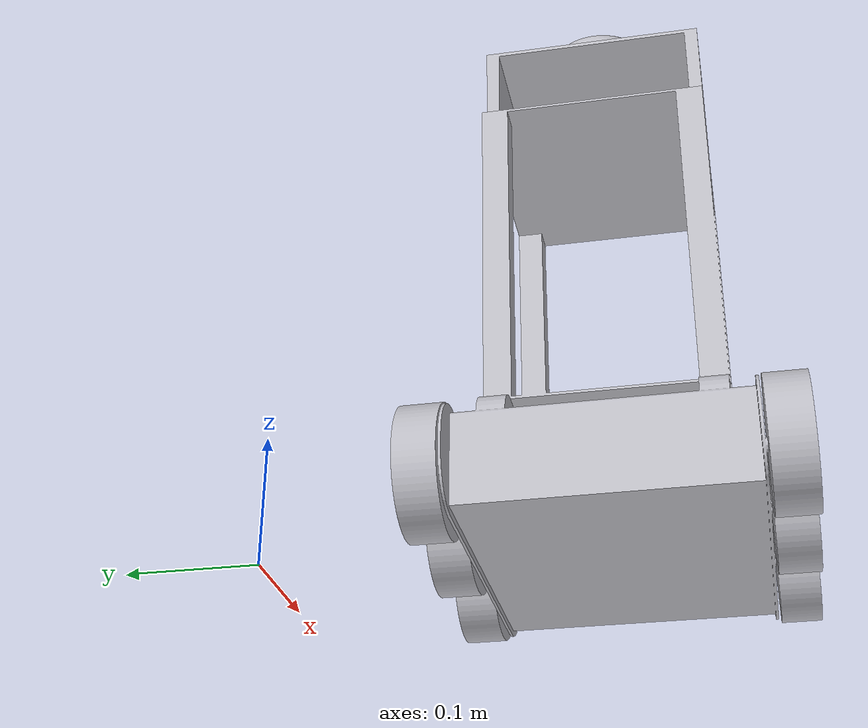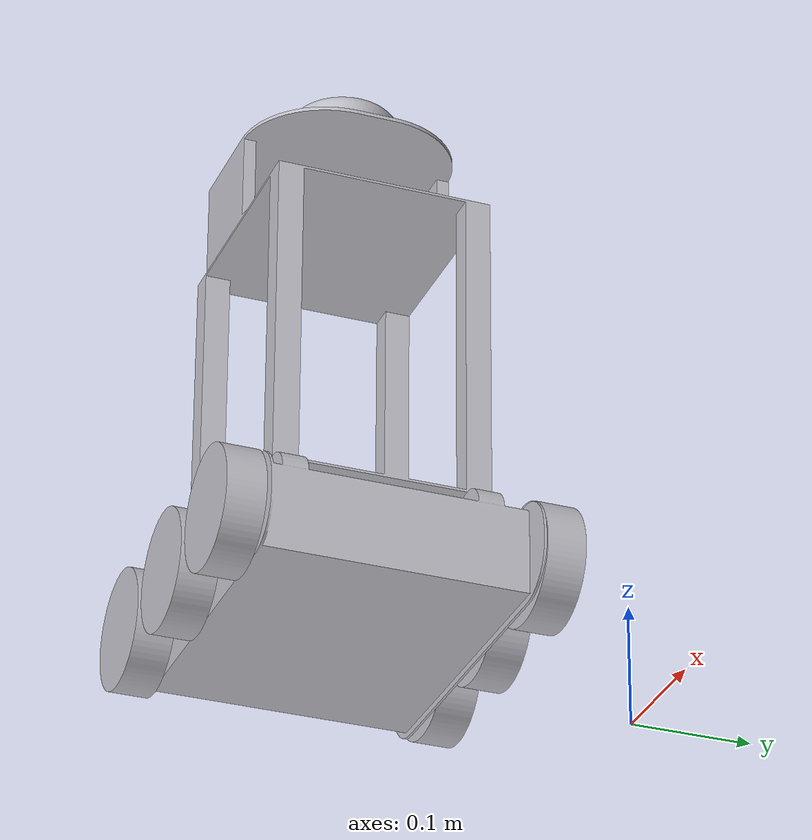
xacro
<?xml version="1.0" ?>
<robot name="tankbot" xmlns:xacro="http://www.ros.org/wiki/xacro">

<xacro:include filename="$(find tankbot_description)/urdf/materials.xacro" />
<xacro:include filename="$(find tankbot_description)/urdf/tankbot.trans" />
<xacro:include filename="$(find tankbot_description)/urdf/tankbot.gazebo" />
<link name="base_link">
  <inertial>
    <origin xyz="0.04802449670948884 -0.2570000000000001 0.03092345572753796" rpy="0 0 0"/>
    <mass value="9.663393854812522"/>
    <inertia ixx="0.050312" iyy="0.087124" izz="0.121613" ixy="-0.0" iyz="-0.0" ixz="-1.3e-05"/>
  </inertial>
  <visual>
    <origin xyz="0 0 0" rpy="0 0 0"/>
    <geometry>
      <mesh filename="package://tankbot_description/meshes/base_link.stl" scale="0.001 0.001 0.001"/>
    </geometry>
    <material name="silver"/>
  </visual>
  <collision>
    <origin xyz="0 0 0" rpy="0 0 0"/>
    <geometry>
      <mesh filename="package://tankbot_description/meshes/base_link.stl" scale="0.001 0.001 0.001"/>
    </geometry>
  </collision>
</link>

<link name="rw3_link_1">
  <inertial>
    <origin xyz="-2.7755575615628914e-17 -0.015000000000000069 -2.0816681711721685e-17" rpy="0 0 0"/>
    <mass value="1.6692754390078943"/>
    <inertia ixx="0.001067" iyy="0.001883" izz="0.001067" ixy="0.0" iyz="0.0" ixz="0.0"/>
  </inertial>
  <visual>
    <origin xyz="0.055 0.3635 -0.035" rpy="0 0 0"/>
    <geometry>
      <mesh filename="package://tankbot_description/meshes/rw3_link_1.stl" scale="0.001 0.001 0.001"/>
    </geometry>
    <material name="silver"/>
  </visual>
  <collision>
    <origin xyz="0.055 0.3635 -0.035" rpy="0 0 0"/>
    <geometry>
      <mesh filename="package://tankbot_description/meshes/rw3_link_1.stl" scale="0.001 0.001 0.001"/>
    </geometry>
  </collision>
</link>

<link name="rw2_link_1">
  <inertial>
    <origin xyz="2.7755575615628914e-17 -0.015000000000000513 9.020562075079397e-17" rpy="0 0 0"/>
    <mass value="1.669275439007894"/>
    <inertia ixx="0.001067" iyy="0.001883" izz="0.001067" ixy="-0.0" iyz="-0.0" ixz="-0.0"/>
  </inertial>
  <visual>
    <origin xyz="-0.0475 0.3635 -0.035" rpy="0 0 0"/>
    <geometry>
      <mesh filename="package://tankbot_description/meshes/rw2_link_1.stl" scale="0.001 0.001 0.001"/>
    </geometry>
    <material name="silver"/>
  </visual>
  <collision>
    <origin xyz="-0.0475 0.3635 -0.035" rpy="0 0 0"/>
    <geometry>
      <mesh filename="package://tankbot_description/meshes/rw2_link_1.stl" scale="0.001 0.001 0.001"/>
    </geometry>
  </collision>
</link>

<link name="rw1_link_1">
  <inertial>
    <origin xyz="-1.1102230246251565e-16 -0.015000000000000013 1.3877787807814457e-17" rpy="0 0 0"/>
    <mass value="1.6692754390078939"/>
    <inertia ixx="0.001067" iyy="0.001883" izz="0.001067" ixy="0.0" iyz="-0.0" ixz="-0.0"/>
  </inertial>
  <visual>
    <origin xyz="-0.15 0.3635 -0.035" rpy="0 0 0"/>
    <geometry>
      <mesh filename="package://tankbot_description/meshes/rw1_link_1.stl" scale="0.001 0.001 0.001"/>
    </geometry>
    <material name="silver"/>
  </visual>
  <collision>
    <origin xyz="-0.15 0.3635 -0.035" rpy="0 0 0"/>
    <geometry>
      <mesh filename="package://tankbot_description/meshes/rw1_link_1.stl" scale="0.001 0.001 0.001"/>
    </geometry>
  </collision>
</link>

<link name="lw1_link_1">
  <inertial>
    <origin xyz="1.1102230246251565e-16 0.014999999999999902 3.469446951953614e-17" rpy="0 0 0"/>
    <mass value="1.6692754390078937"/>
    <inertia ixx="0.001067" iyy="0.001883" izz="0.001067" ixy="0.0" iyz="0.0" ixz="0.0"/>
  </inertial>
  <visual>
    <origin xyz="-0.1505 0.1505 -0.035" rpy="0 0 0"/>
    <geometry>
      <mesh filename="package://tankbot_description/meshes/lw1_link_1.stl" scale="0.001 0.001 0.001"/>
    </geometry>
    <material name="silver"/>
  </visual>
  <collision>
    <origin xyz="-0.1505 0.1505 -0.035" rpy="0 0 0"/>
    <geometry>
      <mesh filename="package://tankbot_description/meshes/lw1_link_1.stl" scale="0.001 0.001 0.001"/>
    </geometry>
  </collision>
</link>

<link name="lw2_link_1">
  <inertial>
    <origin xyz="6.245004513516506e-17 0.014999999999999875 2.7755575615628914e-17" rpy="0 0 0"/>
    <mass value="1.6692754390078937"/>
    <inertia ixx="0.001067" iyy="0.001883" izz="0.001067" ixy="0.0" iyz="0.0" ixz="0.0"/>
  </inertial>
  <visual>
    <origin xyz="-0.048 0.1505 -0.035" rpy="0 0 0"/>
    <geometry>
      <mesh filename="package://tankbot_description/meshes/lw2_link_1.stl" scale="0.001 0.001 0.001"/>
    </geometry>
    <material name="silver"/>
  </visual>
  <collision>
    <origin xyz="-0.048 0.1505 -0.035" rpy="0 0 0"/>
    <geometry>
      <mesh filename="package://tankbot_description/meshes/lw2_link_1.stl" scale="0.001 0.001 0.001"/>
    </geometry>
  </collision>
</link>

<link name="lw3_link_1">
  <inertial>
    <origin xyz="9.71445146547012e-17 0.01499999999999993 2.7755575615628914e-17" rpy="0 0 0"/>
    <mass value="1.6692754390078937"/>
    <inertia ixx="0.001067" iyy="0.001883" izz="0.001067" ixy="0.0" iyz="0.0" ixz="0.0"/>
  </inertial>
  <visual>
    <origin xyz="0.0545 0.1505 -0.035" rpy="0 0 0"/>
    <geometry>
      <mesh filename="package://tankbot_description/meshes/lw3_link_1.stl" scale="0.001 0.001 0.001"/>
    </geometry>
    <material name="silver"/>
  </visual>
  <collision>
    <origin xyz="0.0545 0.1505 -0.035" rpy="0 0 0"/>
    <geometry>
      <mesh filename="package://tankbot_description/meshes/lw3_link_1.stl" scale="0.001 0.001 0.001"/>
    </geometry>
  </collision>
</link>

<link name="frame_1">
  <inertial>
    <origin xyz="1.1856979425378666e-07 -1.1102230246251565e-16 0.1270000000000003" rpy="0 0 0"/>
    <mass value="4.173751809755388"/>
    <inertia ixx="0.053156" iyy="0.059602" izz="0.047225" ixy="0.0" iyz="0.0" ixz="0.0"/>
  </inertial>
  <visual>
    <origin xyz="-0.048432 0.2575 -0.09" rpy="0 0 0"/>
    <geometry>
      <mesh filename="package://tankbot_description/meshes/frame_1.stl" scale="0.001 0.001 0.001"/>
    </geometry>
    <material name="silver"/>
  </visual>
  <collision>
    <origin xyz="-0.048432 0.2575 -0.09" rpy="0 0 0"/>
    <geometry>
      <mesh filename="package://tankbot_description/meshes/frame_1.stl" scale="0.001 0.001 0.001"/>
    </geometry>
  </collision>
</link>

<link name="holder_1">
  <inertial>
    <origin xyz="-0.015898641976588364 -0.0001410013794365672 0.03722253654962837" rpy="0 0 0"/>
    <mass value="2.1421450013668144"/>
    <inertia ixx="0.010373" iyy="0.004839" izz="0.011427" ixy="1.1e-05" iyz="-5e-06" ixz="6.3e-05"/>
  </inertial>
  <visual>
    <origin xyz="-0.048432 0.2575 -0.344" rpy="0 0 0"/>
    <geometry>
      <mesh filename="package://tankbot_description/meshes/holder_1.stl" scale="0.001 0.001 0.001"/>
    </geometry>
    <material name="silver"/>
  </visual>
  <collision>
    <origin xyz="-0.048432 0.2575 -0.344" rpy="0 0 0"/>
    <geometry>
      <mesh filename="package://tankbot_description/meshes/holder_1.stl" scale="0.001 0.001 0.001"/>
    </geometry>
  </collision>
</link>

<link name="camera_1">
  <inertial>
    <origin xyz="0.005000020162195945 1.3403930410049725e-07 1.1102230246251565e-16" rpy="0 0 0"/>
    <mass value="0.15204665638341558"/>
    <inertia ixx="0.000106" iyy="7e-06" izz="0.000102" ixy="-0.0" iyz="0.0" ixz="-0.0"/>
  </inertial>
  <visual>
    <origin xyz="-0.072341 0.260428 -0.367" rpy="0 0 0"/>
    <geometry>
      <mesh filename="package://tankbot_description/meshes/camera_1.stl" scale="0.001 0.001 0.001"/>
    </geometry>
    <material name="silver"/>
  </visual>
  <collision>
    <origin xyz="-0.072341 0.260428 -0.367" rpy="0 0 0"/>
    <geometry>
      <mesh filename="package://tankbot_description/meshes/camera_1.stl" scale="0.001 0.001 0.001"/>
    </geometry>
  </collision>
</link>

<link name="lidar_1">
  <inertial>
    <origin xyz="-4.29900122521365e-07 -2.5480986765025193e-09 0.019135896206633696" rpy="0 0 0"/>
    <mass value="1.898390048800237"/>
    <inertia ixx="0.001161" iyy="0.001161" izz="0.001848" ixy="0.0" iyz="-0.0" ixz="-0.0"/>
  </inertial>
  <visual>
    <origin xyz="-0.048387 0.2575 -0.42" rpy="0 0 0"/>
    <geometry>
      <mesh filename="package://tankbot_description/meshes/lidar_1.stl" scale="0.001 0.001 0.001"/>
    </geometry>
    <material name="silver"/>
  </visual>
  <collision>
    <origin xyz="-0.048387 0.2575 -0.42" rpy="0 0 0"/>
    <geometry>
      <mesh filename="package://tankbot_description/meshes/lidar_1.stl" scale="0.001 0.001 0.001"/>
    </geometry>
  </collision>
</link>

<joint name="rw3_joint" type="continuous">
  <origin xyz="-0.055 -0.3635 0.035" rpy="0 0 0"/>
  <parent link="base_link"/>
  <child link="rw3_link_1"/>
  <axis xyz="-0.0 1.0 0.0"/>
</joint>

<joint name="rw2_joint" type="continuous">
  <origin xyz="0.0475 -0.3635 0.035" rpy="0 0 0"/>
  <parent link="base_link"/>
  <child link="rw2_link_1"/>
  <axis xyz="-0.0 1.0 0.0"/>
</joint>

<joint name="rw1_joint" type="continuous">
  <origin xyz="0.15 -0.3635 0.035" rpy="0 0 0"/>
  <parent link="base_link"/>
  <child link="rw1_link_1"/>
  <axis xyz="-0.0 1.0 0.0"/>
</joint>

<joint name="lw1_joint" type="continuous">
  <origin xyz="0.1505 -0.1505 0.035" rpy="0 0 0"/>
  <parent link="base_link"/>
  <child link="lw1_link_1"/>
  <axis xyz="0.0 1.0 0.0"/>
</joint>

<joint name="lw2_joint" type="continuous">
  <origin xyz="0.048 -0.1505 0.035" rpy="0 0 0"/>
  <parent link="base_link"/>
  <child link="lw2_link_1"/>
  <axis xyz="0.0 1.0 0.0"/>
</joint>

<joint name="lw3_joint" type="continuous">
  <origin xyz="-0.0545 -0.1505 0.035" rpy="0 0 0"/>
  <parent link="base_link"/>
  <child link="lw3_link_1"/>
  <axis xyz="0.0 1.0 0.0"/>
</joint>

<joint name="frame_joint" type="fixed">
  <origin xyz="0.048432 -0.2575 0.09" rpy="0 0 0"/>
  <parent link="base_link"/>
  <child link="frame_1"/>
</joint>

<joint name="holder_joint" type="fixed">
  <origin xyz="0.0 0.0 0.254" rpy="0 0 0"/>
  <parent link="frame_1"/>
  <child link="holder_1"/>
</joint>

<joint name="camera_joint" type="fixed">
  <origin xyz="0.023909 -0.002928 0.023" rpy="0 0 0"/>
  <parent link="holder_1"/>
  <child link="camera_1"/>
</joint>

<joint name="lidar_joint" type="fixed">
  <origin xyz="-4.5e-05 0.0 0.076" rpy="0 0 0"/>
  <parent link="holder_1"/>
  <child link="lidar_1"/>
</joint>

</robot>

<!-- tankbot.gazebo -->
<robot name="tankbot" xmlns:xacro="http://www.ros.org/wiki/xacro" >

<xacro:property name="body_color" value="Gazebo/Silver" />
<xacro:property name="camera_link" value="0.05" /> <!-- Size of square 'camera' box -->
<gazebo>
  <plugin filename="libgazebo_ros_control.so" name="control"/>
</gazebo>
<gazebo reference="base_link">
  <material>${body_color}</material>
  <mu1>0.2</mu1>
  <mu2>0.2</mu2>
  <selfCollide>true</selfCollide>
  <gravity>true</gravity>
</gazebo>

<gazebo reference="rw3_link_1">
  <material>${body_color}</material>
  <mu1>0.2</mu1>
  <mu2>0.2</mu2>
  <selfCollide>true</selfCollide>
</gazebo>

<gazebo reference="rw2_link_1">
  <material>${body_color}</material>
  <mu1>0.2</mu1>
  <mu2>0.2</mu2>
  <selfCollide>true</selfCollide>
</gazebo>

<gazebo reference="rw1_link_1">
  <material>${body_color}</material>
  <mu1>0.2</mu1>
  <mu2>0.2</mu2>
  <selfCollide>true</selfCollide>
</gazebo>

<gazebo reference="lw1_link_1">
  <material>${body_color}</material>
  <mu1>0.2</mu1>
  <mu2>0.2</mu2>
  <selfCollide>true</selfCollide>
</gazebo>

<gazebo reference="lw2_link_1">
  <material>${body_color}</material>
  <mu1>0.2</mu1>
  <mu2>0.2</mu2>
  <selfCollide>true</selfCollide>
</gazebo>

<gazebo reference="lw3_link_1">
  <material>${body_color}</material>
  <mu1>0.2</mu1>
  <mu2>0.2</mu2>
  <selfCollide>true</selfCollide>
</gazebo>

<gazebo reference="frame_1">
  <material>${body_color}</material>
  <mu1>0.2</mu1>
  <mu2>0.2</mu2>
  <selfCollide>true</selfCollide>
</gazebo>

<gazebo reference="holder_1">
  <material>${body_color}</material>
  <mu1>0.2</mu1>
  <mu2>0.2</mu2>
  <selfCollide>true</selfCollide>
</gazebo>

<gazebo reference="camera_1">
  <material>${body_color}</material>
  <mu1>0.2</mu1>
  <mu2>0.2</mu2>
  <selfCollide>true</selfCollide>
</gazebo>

<gazebo reference="lidar_1">
  <material>${body_color}</material>
  <mu1>0.2</mu1>
  <mu2>0.2</mu2>
  <selfCollide>true</selfCollide>
</gazebo>

<!-- camera -->
  <gazebo reference="camera_1">
    <sensor type="camera" name="camera1">
      <update_rate>30.0</update_rate>
      <camera name="head">
        <horizontal_fov>1.3962634</horizontal_fov>
        <image>
          <width>800</width>
          <height>800</height>
          <format>R8G8B8</format>
        </image>
        <clip>
          <near>0.02</near>
          <far>300</far>
        </clip>
        <noise>
          <type>gaussian</type>
          <!-- Noise is sampled independently per pixel on each frame.
               That pixel's noise value is added to each of its color
               channels, which at that point lie in the range [0,1]. -->
          <mean>0.0</mean>
          <stddev>0.007</stddev>
        </noise>
      </camera>
      <plugin name="camera_controller" filename="libgazebo_ros_camera.so">
        <alwaysOn>true</alwaysOn>
        <updateRate>0.0</updateRate>
        <cameraName>rrbot/camera1</cameraName>
        <imageTopicName>image_raw</imageTopicName>
        <cameraInfoTopicName>camera_info</cameraInfoTopicName>
        <frameName>camera_link</frameName>
        <hackBaseline>0.07</hackBaseline>
        <distortionK1>0.0</distortionK1>
        <distortionK2>0.0</distortionK2>
        <distortionK3>0.0</distortionK3>
        <distortionT1>0.0</distortionT1>
        <distortionT2>0.0</distortionT2>
      </plugin>
    </sensor>
  </gazebo>

  <gazebo>
    <plugin name="differential_drive_controller" filename="libgazebo_ros_diff_drive_multiwheel.so">
        <updateRate>50</updateRate>
        <leftJoints>lw3_joint lw2_joint  lw1_joint </leftJoints>
        <rightJoints>rw3_joint rw2_joint rw1_joint </rightJoints>
        <wheelSeparation>0.2</wheelSeparation>
        <wheelDiameter>0.13</wheelDiameter>
        <wheelAcceleration>0.2</wheelAcceleration>
        <wheelTorque>5</wheelTorque>
        <commandTopic>/cmd_vel</commandTopic>
        <odometryTopic>odom</odometryTopic>
        <odometryFrame>odom</odometryFrame>
        <robotBaseFrame>base_link</robotBaseFrame>
        <odometrySource>1</odometrySource>
        <publishWheelTF>true</publishWheelTF>
        <publishOdomTF>true</publishOdomTF>
        <publishWheelJointState>true</publishWheelJointState>
        <legacyMode>false</legacyMode>
    </plugin>
</gazebo>
 <gazebo reference="lidar_1">
    <sensor type="ray" name="head_hokuyo_sensor">
      <pose>0 0 0 0 0 0</pose>
      <visualize>true</visualize>
      <update_rate>40</update_rate>
      <ray>
        <scan>
          <horizontal>
            <samples>720</samples>
            <resolution>1</resolution>
            <min_angle>-1.570796</min_angle>
            <max_angle>1.570796</max_angle>
          </horizontal>
        </scan>
        <range>
          <min>0.10</min>
          <max>30.0</max>
          <resolution>0.01</resolution>
        </range>
        <noise>
          <type>gaussian</type>
          <mean>0.0</mean>
          <stddev>0.01</stddev>
        </noise>
      </ray>
      <plugin name="gazebo_ros_head_hokuyo_controller" filename="libgazebo_ros_laser.so">
        <topicName>/scan</topicName>
        <frameName>lidar_1</frameName>
      </plugin>
    </sensor>
  </gazebo>

</robot>
